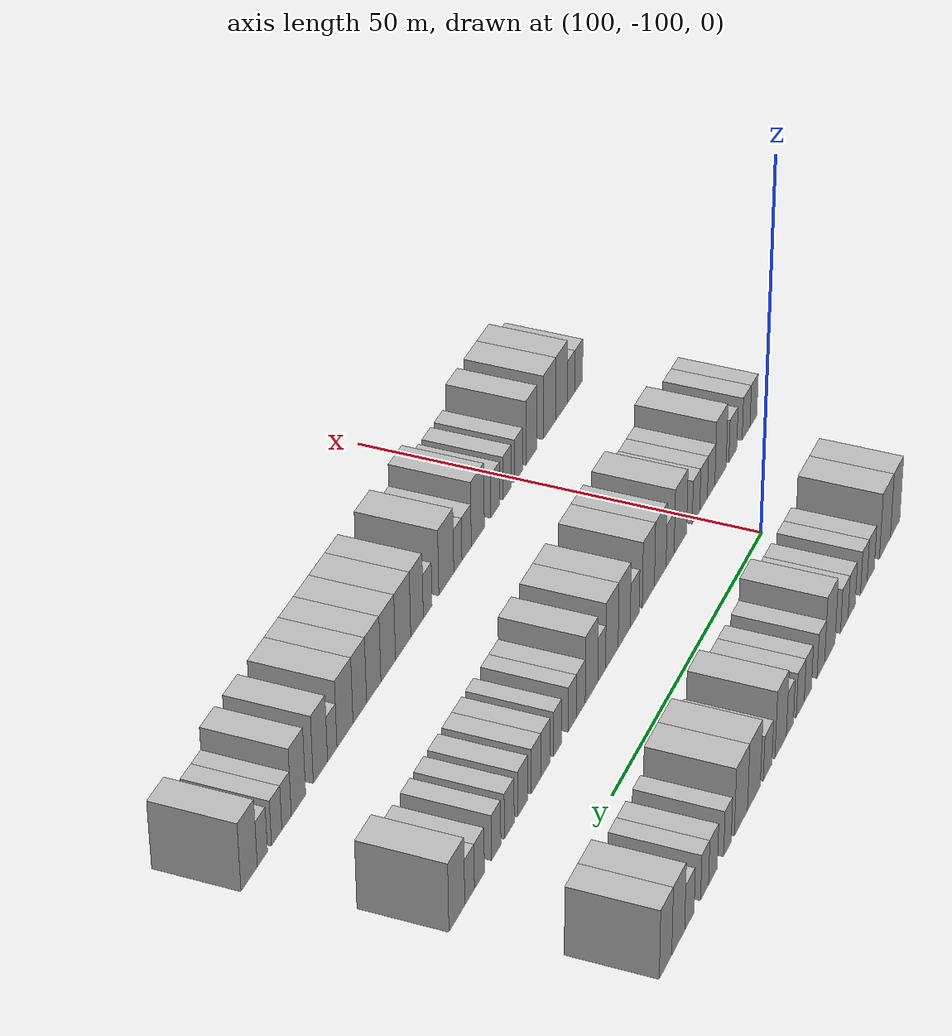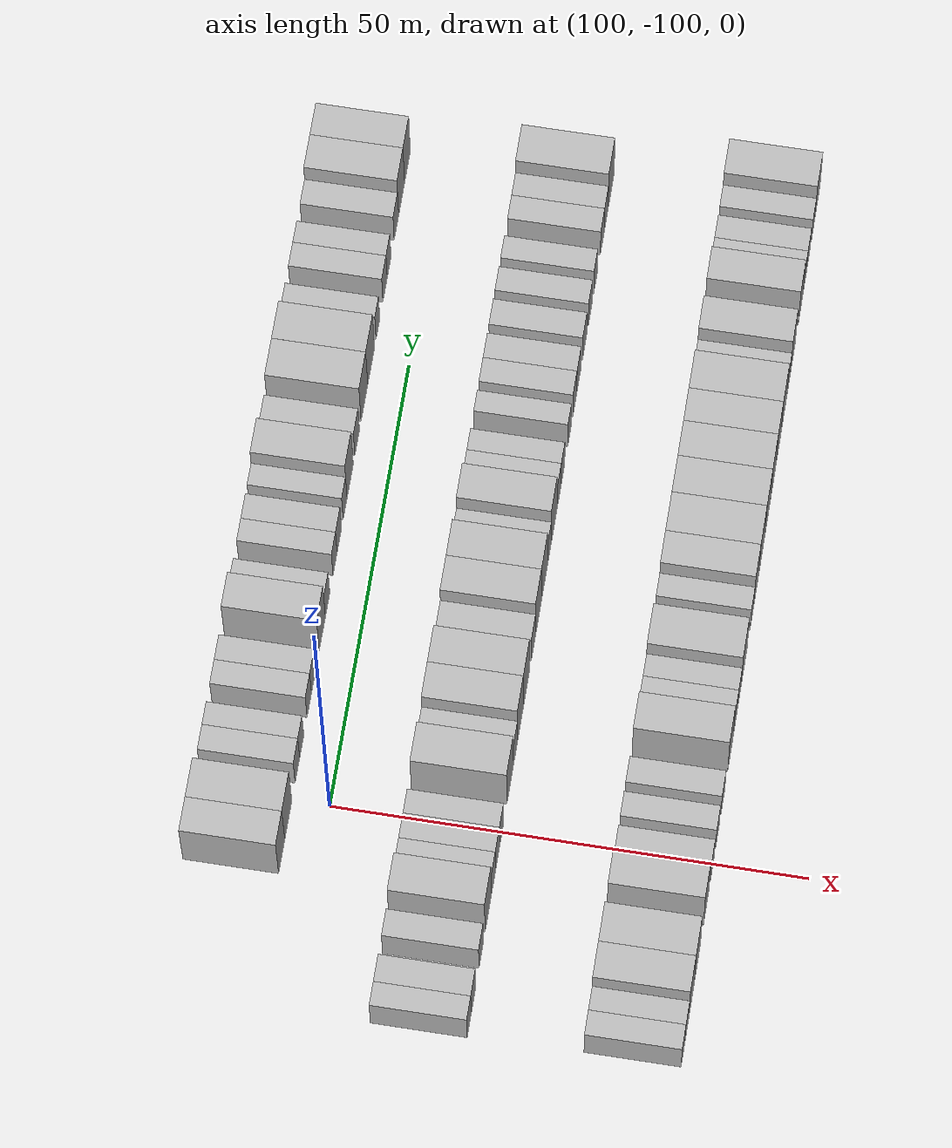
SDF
<sdf version="1.6">
 <world name="default">
  <model name="building_621">
   <static>1</static>
   <pose>91.0000 -106.1518 0 0.000000 0.000000 0.000000</pose>
   <link name="link">
    <pose>0 0 4.50 0 0 0</pose>
    <collision name="collision"><geometry><box><size>10.0000 3.7290 9.0000</size></box></geometry></collision>
    <visual name="visual">
     <cast_shadows>0</cast_shadows>
     <geometry><box><size>10.0000 3.7290 9.0000</size></box></geometry>
     <material>
      <script>
       <uri>model://HANNAS_wall/materials/scripts</uri>
       <uri>model://HANNAS_wall/materials/textures</uri>
       <name>vrc/HANNAS_wall</name>
      </script>
     </material>
    </visual>
   </link>
  </model>
  <model name="building_622">
   <static>1</static>
   <pose>91.0000 -102.1590 0 0.000000 0.000000 0.000000</pose>
   <link name="link">
    <pose>0 0 4.50 0 0 0</pose>
    <collision name="collision"><geometry><box><size>10.0000 4.2565 9.0000</size></box></geometry></collision>
    <visual name="visual">
     <cast_shadows>0</cast_shadows>
     <geometry><box><size>10.0000 4.2565 9.0000</size></box></geometry>
     <material>
      <script>
       <uri>model://HANNAS_wall/materials/scripts</uri>
       <uri>model://HANNAS_wall/materials/textures</uri>
       <name>vrc/HANNAS_wall</name>
      </script>
     </material>
    </visual>
   </link>
  </model>
  <model name="building_623">
   <static>1</static>
   <pose>91.0000 -96.6412 0 0.000000 0.000000 0.000000</pose>
   <link name="link">
    <pose>0 0 3.00 0 0 0</pose>
    <collision name="collision"><geometry><box><size>10.0000 2.7792 6.0000</size></box></geometry></collision>
    <visual name="visual">
     <cast_shadows>0</cast_shadows>
     <geometry><box><size>10.0000 2.7792 6.0000</size></box></geometry>
     <material>
      <script>
       <uri>model://HANNAS_wall/materials/scripts</uri>
       <uri>model://HANNAS_wall/materials/textures</uri>
       <name>vrc/HANNAS_wall</name>
      </script>
     </material>
    </visual>
   </link>
  </model>
  <model name="building_624">
   <static>1</static>
   <pose>91.0000 -93.9925 0 0.000000 0.000000 0.000000</pose>
   <link name="link">
    <pose>0 0 3.00 0 0 0</pose>
    <collision name="collision"><geometry><box><size>10.0000 2.5183 6.0000</size></box></geometry></collision>
    <visual name="visual">
     <cast_shadows>0</cast_shadows>
     <geometry><box><size>10.0000 2.5183 6.0000</size></box></geometry>
     <material>
      <script>
       <uri>model://HANNAS_wall/materials/scripts</uri>
       <uri>model://HANNAS_wall/materials/textures</uri>
       <name>vrc/HANNAS_wall</name>
      </script>
     </material>
    </visual>
   </link>
  </model>
  <model name="building_625">
   <static>1</static>
   <pose>91.0000 -89.3885 0 0.000000 0.000000 0.000000</pose>
   <link name="link">
    <pose>0 0 3.00 0 0 0</pose>
    <collision name="collision"><geometry><box><size>10.0000 2.6897 6.0000</size></box></geometry></collision>
    <visual name="visual">
     <cast_shadows>0</cast_shadows>
     <geometry><box><size>10.0000 2.6897 6.0000</size></box></geometry>
     <material>
      <script>
       <uri>model://HANNAS_wall/materials/scripts</uri>
       <uri>model://HANNAS_wall/materials/textures</uri>
       <name>vrc/HANNAS_wall</name>
      </script>
     </material>
    </visual>
   </link>
  </model>
  <model name="building_626">
   <static>1</static>
   <pose>91.0000 -86.6593 0 0.000000 0.000000 0.000000</pose>
   <link name="link">
    <pose>0 0 3.00 0 0 0</pose>
    <collision name="collision"><geometry><box><size>10.0000 2.7686 6.0000</size></box></geometry></collision>
    <visual name="visual">
     <cast_shadows>0</cast_shadows>
     <geometry><box><size>10.0000 2.7686 6.0000</size></box></geometry>
     <material>
      <script>
       <uri>model://HANNAS_wall/materials/scripts</uri>
       <uri>model://HANNAS_wall/materials/textures</uri>
       <name>vrc/HANNAS_wall</name>
      </script>
     </material>
    </visual>
   </link>
  </model>
  <model name="building_627">
   <static>1</static>
   <pose>91.0000 -81.3610 0 0.000000 0.000000 0.000000</pose>
   <link name="link">
    <pose>0 0 4.50 0 0 0</pose>
    <collision name="collision"><geometry><box><size>10.0000 3.8280 9.0000</size></box></geometry></collision>
    <visual name="visual">
     <cast_shadows>0</cast_shadows>
     <geometry><box><size>10.0000 3.8280 9.0000</size></box></geometry>
     <material>
      <script>
       <uri>model://HANNAS_wall/materials/scripts</uri>
       <uri>model://HANNAS_wall/materials/textures</uri>
       <name>vrc/HANNAS_wall</name>
      </script>
     </material>
    </visual>
   </link>
  </model>
  <model name="building_628">
   <static>1</static>
   <pose>91.0000 -78.0835 0 0.000000 0.000000 0.000000</pose>
   <link name="link">
    <pose>0 0 3.00 0 0 0</pose>
    <collision name="collision"><geometry><box><size>10.0000 2.7270 6.0000</size></box></geometry></collision>
    <visual name="visual">
     <cast_shadows>0</cast_shadows>
     <geometry><box><size>10.0000 2.7270 6.0000</size></box></geometry>
     <material>
      <script>
       <uri>model://HANNAS_wall/materials/scripts</uri>
       <uri>model://HANNAS_wall/materials/textures</uri>
       <name>vrc/HANNAS_wall</name>
      </script>
     </material>
    </visual>
   </link>
  </model>
  <model name="building_629">
   <static>1</static>
   <pose>91.0000 -73.4471 0 0.000000 0.000000 0.000000</pose>
   <link name="link">
    <pose>0 0 3.00 0 0 0</pose>
    <collision name="collision"><geometry><box><size>10.0000 2.5458 6.0000</size></box></geometry></collision>
    <visual name="visual">
     <cast_shadows>0</cast_shadows>
     <geometry><box><size>10.0000 2.5458 6.0000</size></box></geometry>
     <material>
      <script>
       <uri>model://HANNAS_wall/materials/scripts</uri>
       <uri>model://HANNAS_wall/materials/textures</uri>
       <name>vrc/HANNAS_wall</name>
      </script>
     </material>
    </visual>
   </link>
  </model>
  <model name="building_630">
   <static>1</static>
   <pose>91.0000 -70.7755 0 0.000000 0.000000 0.000000</pose>
   <link name="link">
    <pose>0 0 3.00 0 0 0</pose>
    <collision name="collision"><geometry><box><size>10.0000 2.7975 6.0000</size></box></geometry></collision>
    <visual name="visual">
     <cast_shadows>0</cast_shadows>
     <geometry><box><size>10.0000 2.7975 6.0000</size></box></geometry>
     <material>
      <script>
       <uri>model://HANNAS_wall/materials/scripts</uri>
       <uri>model://HANNAS_wall/materials/textures</uri>
       <name>vrc/HANNAS_wall</name>
      </script>
     </material>
    </visual>
   </link>
  </model>
  <model name="building_631">
   <static>1</static>
   <pose>91.0000 -67.1498 0 0.000000 0.000000 0.000000</pose>
   <link name="link">
    <pose>0 0 3.00 0 0 0</pose>
    <collision name="collision"><geometry><box><size>10.0000 2.4539 6.0000</size></box></geometry></collision>
    <visual name="visual">
     <cast_shadows>0</cast_shadows>
     <geometry><box><size>10.0000 2.4539 6.0000</size></box></geometry>
     <material>
      <script>
       <uri>model://HANNAS_wall/materials/scripts</uri>
       <uri>model://HANNAS_wall/materials/textures</uri>
       <name>vrc/HANNAS_wall</name>
      </script>
     </material>
    </visual>
   </link>
  </model>
  <model name="building_632">
   <static>1</static>
   <pose>91.0000 -63.9726 0 0.000000 0.000000 0.000000</pose>
   <link name="link">
    <pose>0 0 4.50 0 0 0</pose>
    <collision name="collision"><geometry><box><size>10.0000 3.9005 9.0000</size></box></geometry></collision>
    <visual name="visual">
     <cast_shadows>0</cast_shadows>
     <geometry><box><size>10.0000 3.9005 9.0000</size></box></geometry>
     <material>
      <script>
       <uri>model://HANNAS_wall/materials/scripts</uri>
       <uri>model://HANNAS_wall/materials/textures</uri>
       <name>vrc/HANNAS_wall</name>
      </script>
     </material>
    </visual>
   </link>
  </model>
  <model name="building_633">
   <static>1</static>
   <pose>91.0000 -59.5592 0 0.000000 0.000000 0.000000</pose>
   <link name="link">
    <pose>0 0 3.00 0 0 0</pose>
    <collision name="collision"><geometry><box><size>10.0000 2.9263 6.0000</size></box></geometry></collision>
    <visual name="visual">
     <cast_shadows>0</cast_shadows>
     <geometry><box><size>10.0000 2.9263 6.0000</size></box></geometry>
     <material>
      <script>
       <uri>model://HANNAS_wall/materials/scripts</uri>
       <uri>model://HANNAS_wall/materials/textures</uri>
       <name>vrc/HANNAS_wall</name>
      </script>
     </material>
    </visual>
   </link>
  </model>
  <model name="building_634">
   <static>1</static>
   <pose>91.0000 -54.9752 0 0.000000 0.000000 0.000000</pose>
   <link name="link">
    <pose>0 0 4.50 0 0 0</pose>
    <collision name="collision"><geometry><box><size>10.0000 4.2417 9.0000</size></box></geometry></collision>
    <visual name="visual">
     <cast_shadows>0</cast_shadows>
     <geometry><box><size>10.0000 4.2417 9.0000</size></box></geometry>
     <material>
      <script>
       <uri>model://HANNAS_wall/materials/scripts</uri>
       <uri>model://HANNAS_wall/materials/textures</uri>
       <name>vrc/HANNAS_wall</name>
      </script>
     </material>
    </visual>
   </link>
  </model>
  <model name="building_635">
   <static>1</static>
   <pose>91.0000 -50.7060 0 0.000000 0.000000 0.000000</pose>
   <link name="link">
    <pose>0 0 4.50 0 0 0</pose>
    <collision name="collision"><geometry><box><size>10.0000 4.2966 9.0000</size></box></geometry></collision>
    <visual name="visual">
     <cast_shadows>0</cast_shadows>
     <geometry><box><size>10.0000 4.2966 9.0000</size></box></geometry>
     <material>
      <script>
       <uri>model://HANNAS_wall/materials/scripts</uri>
       <uri>model://HANNAS_wall/materials/textures</uri>
       <name>vrc/HANNAS_wall</name>
      </script>
     </material>
    </visual>
   </link>
  </model>
  <model name="building_636">
   <static>1</static>
   <pose>91.0000 -46.3511 0 0.000000 0.000000 0.000000</pose>
   <link name="link">
    <pose>0 0 3.00 0 0 0</pose>
    <collision name="collision"><geometry><box><size>10.0000 2.4132 6.0000</size></box></geometry></collision>
    <visual name="visual">
     <cast_shadows>0</cast_shadows>
     <geometry><box><size>10.0000 2.4132 6.0000</size></box></geometry>
     <material>
      <script>
       <uri>model://HANNAS_wall/materials/scripts</uri>
       <uri>model://HANNAS_wall/materials/textures</uri>
       <name>vrc/HANNAS_wall</name>
      </script>
     </material>
    </visual>
   </link>
  </model>
  <model name="building_637">
   <static>1</static>
   <pose>91.0000 -41.7542 0 0.000000 0.000000 0.000000</pose>
   <link name="link">
    <pose>0 0 3.00 0 0 0</pose>
    <collision name="collision"><geometry><box><size>10.0000 2.7806 6.0000</size></box></geometry></collision>
    <visual name="visual">
     <cast_shadows>0</cast_shadows>
     <geometry><box><size>10.0000 2.7806 6.0000</size></box></geometry>
     <material>
      <script>
       <uri>model://HANNAS_wall/materials/scripts</uri>
       <uri>model://HANNAS_wall/materials/textures</uri>
       <name>vrc/HANNAS_wall</name>
      </script>
     </material>
    </visual>
   </link>
  </model>
  <model name="building_638">
   <static>1</static>
   <pose>91.0000 -39.1246 0 0.000000 0.000000 0.000000</pose>
   <link name="link">
    <pose>0 0 3.00 0 0 0</pose>
    <collision name="collision"><geometry><box><size>10.0000 2.4787 6.0000</size></box></geometry></collision>
    <visual name="visual">
     <cast_shadows>0</cast_shadows>
     <geometry><box><size>10.0000 2.4787 6.0000</size></box></geometry>
     <material>
      <script>
       <uri>model://HANNAS_wall/materials/scripts</uri>
       <uri>model://HANNAS_wall/materials/textures</uri>
       <name>vrc/HANNAS_wall</name>
      </script>
     </material>
    </visual>
   </link>
  </model>
  <model name="building_639">
   <static>1</static>
   <pose>91.0000 -34.4318 0 0.000000 0.000000 0.000000</pose>
   <link name="link">
    <pose>0 0 3.00 0 0 0</pose>
    <collision name="collision"><geometry><box><size>10.0000 2.9069 6.0000</size></box></geometry></collision>
    <visual name="visual">
     <cast_shadows>0</cast_shadows>
     <geometry><box><size>10.0000 2.9069 6.0000</size></box></geometry>
     <material>
      <script>
       <uri>model://HANNAS_wall/materials/scripts</uri>
       <uri>model://HANNAS_wall/materials/textures</uri>
       <name>vrc/HANNAS_wall</name>
      </script>
     </material>
    </visual>
   </link>
  </model>
  <model name="building_640">
   <static>1</static>
   <pose>91.0000 -31.0367 0 0.000000 0.000000 0.000000</pose>
   <link name="link">
    <pose>0 0 4.50 0 0 0</pose>
    <collision name="collision"><geometry><box><size>10.0000 3.8832 9.0000</size></box></geometry></collision>
    <visual name="visual">
     <cast_shadows>0</cast_shadows>
     <geometry><box><size>10.0000 3.8832 9.0000</size></box></geometry>
     <material>
      <script>
       <uri>model://HANNAS_wall/materials/scripts</uri>
       <uri>model://HANNAS_wall/materials/textures</uri>
       <name>vrc/HANNAS_wall</name>
      </script>
     </material>
    </visual>
   </link>
  </model>
  <model name="building_641">
   <static>1</static>
   <pose>91.0000 -27.2369 0 0.000000 0.000000 0.000000</pose>
   <link name="link">
    <pose>0 0 4.50 0 0 0</pose>
    <collision name="collision"><geometry><box><size>10.0000 3.7163 9.0000</size></box></geometry></collision>
    <visual name="visual">
     <cast_shadows>0</cast_shadows>
     <geometry><box><size>10.0000 3.7163 9.0000</size></box></geometry>
     <material>
      <script>
       <uri>model://HANNAS_wall/materials/scripts</uri>
       <uri>model://HANNAS_wall/materials/textures</uri>
       <name>vrc/HANNAS_wall</name>
      </script>
     </material>
    </visual>
   </link>
  </model>
  <model name="building_808">
   <static>1</static>
   <pose>113.0000 -121.0877 0 0.000000 0.000000 0.000000</pose>
   <link name="link">
    <pose>0 0 3.00 0 0 0</pose>
    <collision name="collision"><geometry><box><size>10.0000 2.5785 6.0000</size></box></geometry></collision>
    <visual name="visual">
     <cast_shadows>0</cast_shadows>
     <geometry><box><size>10.0000 2.5785 6.0000</size></box></geometry>
     <material>
      <script>
       <uri>model://HANNAS_wall/materials/scripts</uri>
       <uri>model://HANNAS_wall/materials/textures</uri>
       <name>vrc/HANNAS_wall</name>
      </script>
     </material>
    </visual>
   </link>
  </model>
  <model name="building_809">
   <static>1</static>
   <pose>113.0000 -118.3335 0 0.000000 0.000000 0.000000</pose>
   <link name="link">
    <pose>0 0 3.00 0 0 0</pose>
    <collision name="collision"><geometry><box><size>10.0000 2.9298 6.0000</size></box></geometry></collision>
    <visual name="visual">
     <cast_shadows>0</cast_shadows>
     <geometry><box><size>10.0000 2.9298 6.0000</size></box></geometry>
     <material>
      <script>
       <uri>model://HANNAS_wall/materials/scripts</uri>
       <uri>model://HANNAS_wall/materials/textures</uri>
       <name>vrc/HANNAS_wall</name>
      </script>
     </material>
    </visual>
   </link>
  </model>
  <model name="building_810">
   <static>1</static>
   <pose>113.0000 -113.4203 0 0.000000 0.000000 0.000000</pose>
   <link name="link">
    <pose>0 0 3.00 0 0 0</pose>
    <collision name="collision"><geometry><box><size>10.0000 2.8966 6.0000</size></box></geometry></collision>
    <visual name="visual">
     <cast_shadows>0</cast_shadows>
     <geometry><box><size>10.0000 2.8966 6.0000</size></box></geometry>
     <material>
      <script>
       <uri>model://HANNAS_wall/materials/scripts</uri>
       <uri>model://HANNAS_wall/materials/textures</uri>
       <name>vrc/HANNAS_wall</name>
      </script>
     </material>
    </visual>
   </link>
  </model>
  <model name="building_811">
   <static>1</static>
   <pose>113.0000 -108.9302 0 0.000000 0.000000 0.000000</pose>
   <link name="link">
    <pose>0 0 4.50 0 0 0</pose>
    <collision name="collision"><geometry><box><size>10.0000 4.0835 9.0000</size></box></geometry></collision>
    <visual name="visual">
     <cast_shadows>0</cast_shadows>
     <geometry><box><size>10.0000 4.0835 9.0000</size></box></geometry>
     <material>
      <script>
       <uri>model://HANNAS_wall/materials/scripts</uri>
       <uri>model://HANNAS_wall/materials/textures</uri>
       <name>vrc/HANNAS_wall</name>
      </script>
     </material>
    </visual>
   </link>
  </model>
  <model name="building_812">
   <static>1</static>
   <pose>113.0000 -105.5512 0 0.000000 0.000000 0.000000</pose>
   <link name="link">
    <pose>0 0 3.00 0 0 0</pose>
    <collision name="collision"><geometry><box><size>10.0000 2.6747 6.0000</size></box></geometry></collision>
    <visual name="visual">
     <cast_shadows>0</cast_shadows>
     <geometry><box><size>10.0000 2.6747 6.0000</size></box></geometry>
     <material>
      <script>
       <uri>model://HANNAS_wall/materials/scripts</uri>
       <uri>model://HANNAS_wall/materials/textures</uri>
       <name>vrc/HANNAS_wall</name>
      </script>
     </material>
    </visual>
   </link>
  </model>
  <model name="building_813">
   <static>1</static>
   <pose>113.0000 -102.8632 0 0.000000 0.000000 0.000000</pose>
   <link name="link">
    <pose>0 0 3.00 0 0 0</pose>
    <collision name="collision"><geometry><box><size>10.0000 2.7012 6.0000</size></box></geometry></collision>
    <visual name="visual">
     <cast_shadows>0</cast_shadows>
     <geometry><box><size>10.0000 2.7012 6.0000</size></box></geometry>
     <material>
      <script>
       <uri>model://HANNAS_wall/materials/scripts</uri>
       <uri>model://HANNAS_wall/materials/textures</uri>
       <name>vrc/HANNAS_wall</name>
      </script>
     </material>
    </visual>
   </link>
  </model>
  <model name="building_814">
   <static>1</static>
   <pose>113.0000 -100.2019 0 0.000000 0.000000 0.000000</pose>
   <link name="link">
    <pose>0 0 3.00 0 0 0</pose>
    <collision name="collision"><geometry><box><size>10.0000 2.6215 6.0000</size></box></geometry></collision>
    <visual name="visual">
     <cast_shadows>0</cast_shadows>
     <geometry><box><size>10.0000 2.6215 6.0000</size></box></geometry>
     <material>
      <script>
       <uri>model://HANNAS_wall/materials/scripts</uri>
       <uri>model://HANNAS_wall/materials/textures</uri>
       <name>vrc/HANNAS_wall</name>
      </script>
     </material>
    </visual>
   </link>
  </model>
  <model name="building_815">
   <static>1</static>
   <pose>113.0000 -94.7405 0 0.000000 0.000000 0.000000</pose>
   <link name="link">
    <pose>0 0 4.50 0 0 0</pose>
    <collision name="collision"><geometry><box><size>10.0000 4.3014 9.0000</size></box></geometry></collision>
    <visual name="visual">
     <cast_shadows>0</cast_shadows>
     <geometry><box><size>10.0000 4.3014 9.0000</size></box></geometry>
     <material>
      <script>
       <uri>model://HANNAS_wall/materials/scripts</uri>
       <uri>model://HANNAS_wall/materials/textures</uri>
       <name>vrc/HANNAS_wall</name>
      </script>
     </material>
    </visual>
   </link>
  </model>
  <model name="building_816">
   <static>1</static>
   <pose>113.0000 -91.2163 0 0.000000 0.000000 0.000000</pose>
   <link name="link">
    <pose>0 0 3.00 0 0 0</pose>
    <collision name="collision"><geometry><box><size>10.0000 2.7469 6.0000</size></box></geometry></collision>
    <visual name="visual">
     <cast_shadows>0</cast_shadows>
     <geometry><box><size>10.0000 2.7469 6.0000</size></box></geometry>
     <material>
      <script>
       <uri>model://HANNAS_wall/materials/scripts</uri>
       <uri>model://HANNAS_wall/materials/textures</uri>
       <name>vrc/HANNAS_wall</name>
      </script>
     </material>
    </visual>
   </link>
  </model>
  <model name="building_817">
   <static>1</static>
   <pose>113.0000 -87.8841 0 0.000000 0.000000 0.000000</pose>
   <link name="link">
    <pose>0 0 4.50 0 0 0</pose>
    <collision name="collision"><geometry><box><size>10.0000 3.9176 9.0000</size></box></geometry></collision>
    <visual name="visual">
     <cast_shadows>0</cast_shadows>
     <geometry><box><size>10.0000 3.9176 9.0000</size></box></geometry>
     <material>
      <script>
       <uri>model://HANNAS_wall/materials/scripts</uri>
       <uri>model://HANNAS_wall/materials/textures</uri>
       <name>vrc/HANNAS_wall</name>
      </script>
     </material>
    </visual>
   </link>
  </model>
  <model name="building_818">
   <static>1</static>
   <pose>113.0000 -83.9077 0 0.000000 0.000000 0.000000</pose>
   <link name="link">
    <pose>0 0 4.50 0 0 0</pose>
    <collision name="collision"><geometry><box><size>10.0000 4.0351 9.0000</size></box></geometry></collision>
    <visual name="visual">
     <cast_shadows>0</cast_shadows>
     <geometry><box><size>10.0000 4.0351 9.0000</size></box></geometry>
     <material>
      <script>
       <uri>model://HANNAS_wall/materials/scripts</uri>
       <uri>model://HANNAS_wall/materials/textures</uri>
       <name>vrc/HANNAS_wall</name>
      </script>
     </material>
    </visual>
   </link>
  </model>
  <model name="building_819">
   <static>1</static>
   <pose>113.0000 -79.4194 0 0.000000 0.000000 0.000000</pose>
   <link name="link">
    <pose>0 0 3.00 0 0 0</pose>
    <collision name="collision"><geometry><box><size>10.0000 2.9414 6.0000</size></box></geometry></collision>
    <visual name="visual">
     <cast_shadows>0</cast_shadows>
     <geometry><box><size>10.0000 2.9414 6.0000</size></box></geometry>
     <material>
      <script>
       <uri>model://HANNAS_wall/materials/scripts</uri>
       <uri>model://HANNAS_wall/materials/textures</uri>
       <name>vrc/HANNAS_wall</name>
      </script>
     </material>
    </visual>
   </link>
  </model>
  <model name="building_820">
   <static>1</static>
   <pose>113.0000 -75.9925 0 0.000000 0.000000 0.000000</pose>
   <link name="link">
    <pose>0 0 4.50 0 0 0</pose>
    <collision name="collision"><geometry><box><size>10.0000 3.9124 9.0000</size></box></geometry></collision>
    <visual name="visual">
     <cast_shadows>0</cast_shadows>
     <geometry><box><size>10.0000 3.9124 9.0000</size></box></geometry>
     <material>
      <script>
       <uri>model://HANNAS_wall/materials/scripts</uri>
       <uri>model://HANNAS_wall/materials/textures</uri>
       <name>vrc/HANNAS_wall</name>
      </script>
     </material>
    </visual>
   </link>
  </model>
  <model name="building_821">
   <static>1</static>
   <pose>113.0000 -72.0273 0 0.000000 0.000000 0.000000</pose>
   <link name="link">
    <pose>0 0 4.50 0 0 0</pose>
    <collision name="collision"><geometry><box><size>10.0000 4.0180 9.0000</size></box></geometry></collision>
    <visual name="visual">
     <cast_shadows>0</cast_shadows>
     <geometry><box><size>10.0000 4.0180 9.0000</size></box></geometry>
     <material>
      <script>
       <uri>model://HANNAS_wall/materials/scripts</uri>
       <uri>model://HANNAS_wall/materials/textures</uri>
       <name>vrc/HANNAS_wall</name>
      </script>
     </material>
    </visual>
   </link>
  </model>
  <model name="building_822">
   <static>1</static>
   <pose>113.0000 -68.7781 0 0.000000 0.000000 0.000000</pose>
   <link name="link">
    <pose>0 0 3.00 0 0 0</pose>
    <collision name="collision"><geometry><box><size>10.0000 2.4806 6.0000</size></box></geometry></collision>
    <visual name="visual">
     <cast_shadows>0</cast_shadows>
     <geometry><box><size>10.0000 2.4806 6.0000</size></box></geometry>
     <material>
      <script>
       <uri>model://HANNAS_wall/materials/scripts</uri>
       <uri>model://HANNAS_wall/materials/textures</uri>
       <name>vrc/HANNAS_wall</name>
      </script>
     </material>
    </visual>
   </link>
  </model>
  <model name="building_823">
   <static>1</static>
   <pose>113.0000 -65.5941 0 0.000000 0.000000 0.000000</pose>
   <link name="link">
    <pose>0 0 4.50 0 0 0</pose>
    <collision name="collision"><geometry><box><size>10.0000 3.8873 9.0000</size></box></geometry></collision>
    <visual name="visual">
     <cast_shadows>0</cast_shadows>
     <geometry><box><size>10.0000 3.8873 9.0000</size></box></geometry>
     <material>
      <script>
       <uri>model://HANNAS_wall/materials/scripts</uri>
       <uri>model://HANNAS_wall/materials/textures</uri>
       <name>vrc/HANNAS_wall</name>
      </script>
     </material>
    </visual>
   </link>
  </model>
  <model name="building_824">
   <static>1</static>
   <pose>113.0000 -62.2578 0 0.000000 0.000000 0.000000</pose>
   <link name="link">
    <pose>0 0 3.00 0 0 0</pose>
    <collision name="collision"><geometry><box><size>10.0000 2.7852 6.0000</size></box></geometry></collision>
    <visual name="visual">
     <cast_shadows>0</cast_shadows>
     <geometry><box><size>10.0000 2.7852 6.0000</size></box></geometry>
     <material>
      <script>
       <uri>model://HANNAS_wall/materials/scripts</uri>
       <uri>model://HANNAS_wall/materials/textures</uri>
       <name>vrc/HANNAS_wall</name>
      </script>
     </material>
    </visual>
   </link>
  </model>
  <model name="building_825">
   <static>1</static>
   <pose>113.0000 -59.6592 0 0.000000 0.000000 0.000000</pose>
   <link name="link">
    <pose>0 0 3.00 0 0 0</pose>
    <collision name="collision"><geometry><box><size>10.0000 2.4120 6.0000</size></box></geometry></collision>
    <visual name="visual">
     <cast_shadows>0</cast_shadows>
     <geometry><box><size>10.0000 2.4120 6.0000</size></box></geometry>
     <material>
      <script>
       <uri>model://HANNAS_wall/materials/scripts</uri>
       <uri>model://HANNAS_wall/materials/textures</uri>
       <name>vrc/HANNAS_wall</name>
      </script>
     </material>
    </visual>
   </link>
  </model>
  <model name="building_826">
   <static>1</static>
   <pose>113.0000 -55.2512 0 0.000000 0.000000 0.000000</pose>
   <link name="link">
    <pose>0 0 3.00 0 0 0</pose>
    <collision name="collision"><geometry><box><size>10.0000 2.4041 6.0000</size></box></geometry></collision>
    <visual name="visual">
     <cast_shadows>0</cast_shadows>
     <geometry><box><size>10.0000 2.4041 6.0000</size></box></geometry>
     <material>
      <script>
       <uri>model://HANNAS_wall/materials/scripts</uri>
       <uri>model://HANNAS_wall/materials/textures</uri>
       <name>vrc/HANNAS_wall</name>
      </script>
     </material>
    </visual>
   </link>
  </model>
  <model name="building_827">
   <static>1</static>
   <pose>113.0000 -51.6596 0 0.000000 0.000000 0.000000</pose>
   <link name="link">
    <pose>0 0 3.00 0 0 0</pose>
    <collision name="collision"><geometry><box><size>10.0000 2.7790 6.0000</size></box></geometry></collision>
    <visual name="visual">
     <cast_shadows>0</cast_shadows>
     <geometry><box><size>10.0000 2.7790 6.0000</size></box></geometry>
     <material>
      <script>
       <uri>model://HANNAS_wall/materials/scripts</uri>
       <uri>model://HANNAS_wall/materials/textures</uri>
       <name>vrc/HANNAS_wall</name>
      </script>
     </material>
    </visual>
   </link>
  </model>
  <model name="building_828">
   <static>1</static>
   <pose>113.0000 -48.8586 0 0.000000 0.000000 0.000000</pose>
   <link name="link">
    <pose>0 0 3.00 0 0 0</pose>
    <collision name="collision"><geometry><box><size>10.0000 2.8230 6.0000</size></box></geometry></collision>
    <visual name="visual">
     <cast_shadows>0</cast_shadows>
     <geometry><box><size>10.0000 2.8230 6.0000</size></box></geometry>
     <material>
      <script>
       <uri>model://HANNAS_wall/materials/scripts</uri>
       <uri>model://HANNAS_wall/materials/textures</uri>
       <name>vrc/HANNAS_wall</name>
      </script>
     </material>
    </visual>
   </link>
  </model>
  <model name="building_829">
   <static>1</static>
   <pose>113.0000 -44.9686 0 0.000000 0.000000 0.000000</pose>
   <link name="link">
    <pose>0 0 3.00 0 0 0</pose>
    <collision name="collision"><geometry><box><size>10.0000 2.9571 6.0000</size></box></geometry></collision>
    <visual name="visual">
     <cast_shadows>0</cast_shadows>
     <geometry><box><size>10.0000 2.9571 6.0000</size></box></geometry>
     <material>
      <script>
       <uri>model://HANNAS_wall/materials/scripts</uri>
       <uri>model://HANNAS_wall/materials/textures</uri>
       <name>vrc/HANNAS_wall</name>
      </script>
     </material>
    </visual>
   </link>
  </model>
  <model name="building_830">
   <static>1</static>
   <pose>113.0000 -41.1045 0 0.000000 0.000000 0.000000</pose>
   <link name="link">
    <pose>0 0 3.00 0 0 0</pose>
    <collision name="collision"><geometry><box><size>10.0000 2.7711 6.0000</size></box></geometry></collision>
    <visual name="visual">
     <cast_shadows>0</cast_shadows>
     <geometry><box><size>10.0000 2.7711 6.0000</size></box></geometry>
     <material>
      <script>
       <uri>model://HANNAS_wall/materials/scripts</uri>
       <uri>model://HANNAS_wall/materials/textures</uri>
       <name>vrc/HANNAS_wall</name>
      </script>
     </material>
    </visual>
   </link>
  </model>
  <model name="building_831">
   <static>1</static>
   <pose>113.0000 -37.4165 0 0.000000 0.000000 0.000000</pose>
   <link name="link">
    <pose>0 0 3.00 0 0 0</pose>
    <collision name="collision"><geometry><box><size>10.0000 2.6048 6.0000</size></box></geometry></collision>
    <visual name="visual">
     <cast_shadows>0</cast_shadows>
     <geometry><box><size>10.0000 2.6048 6.0000</size></box></geometry>
     <material>
      <script>
       <uri>model://HANNAS_wall/materials/scripts</uri>
       <uri>model://HANNAS_wall/materials/textures</uri>
       <name>vrc/HANNAS_wall</name>
      </script>
     </material>
    </visual>
   </link>
  </model>
  <model name="building_832">
   <static>1</static>
   <pose>113.0000 -32.7299 0 0.000000 0.000000 0.000000</pose>
   <link name="link">
    <pose>0 0 3.00 0 0 0</pose>
    <collision name="collision"><geometry><box><size>10.0000 2.7684 6.0000</size></box></geometry></collision>
    <visual name="visual">
     <cast_shadows>0</cast_shadows>
     <geometry><box><size>10.0000 2.7684 6.0000</size></box></geometry>
     <material>
      <script>
       <uri>model://HANNAS_wall/materials/scripts</uri>
       <uri>model://HANNAS_wall/materials/textures</uri>
       <name>vrc/HANNAS_wall</name>
      </script>
     </material>
    </visual>
   </link>
  </model>
  <model name="building_833">
   <static>1</static>
   <pose>113.0000 -30.0265 0 0.000000 0.000000 0.000000</pose>
   <link name="link">
    <pose>0 0 3.00 0 0 0</pose>
    <collision name="collision"><geometry><box><size>10.0000 2.6384 6.0000</size></box></geometry></collision>
    <visual name="visual">
     <cast_shadows>0</cast_shadows>
     <geometry><box><size>10.0000 2.6384 6.0000</size></box></geometry>
     <material>
      <script>
       <uri>model://HANNAS_wall/materials/scripts</uri>
       <uri>model://HANNAS_wall/materials/textures</uri>
       <name>vrc/HANNAS_wall</name>
      </script>
     </material>
    </visual>
   </link>
  </model>
  <model name="building_834">
   <static>1</static>
   <pose>113.0000 -26.5678 0 0.000000 0.000000 0.000000</pose>
   <link name="link">
    <pose>0 0 4.50 0 0 0</pose>
    <collision name="collision"><geometry><box><size>10.0000 4.2789 9.0000</size></box></geometry></collision>
    <visual name="visual">
     <cast_shadows>0</cast_shadows>
     <geometry><box><size>10.0000 4.2789 9.0000</size></box></geometry>
     <material>
      <script>
       <uri>model://HANNAS_wall/materials/scripts</uri>
       <uri>model://HANNAS_wall/materials/textures</uri>
       <name>vrc/HANNAS_wall</name>
      </script>
     </material>
    </visual>
   </link>
  </model>
  <model name="building_994">
   <static>1</static>
   <pose>135.0000 -120.7067 0 0.000000 0.000000 0.000000</pose>
   <link name="link">
    <pose>0 0 3.00 0 0 0</pose>
    <collision name="collision"><geometry><box><size>10.0000 2.6829 6.0000</size></box></geometry></collision>
    <visual name="visual">
     <cast_shadows>0</cast_shadows>
     <geometry><box><size>10.0000 2.6829 6.0000</size></box></geometry>
     <material>
      <script>
       <uri>model://HANNAS_wall/materials/scripts</uri>
       <uri>model://HANNAS_wall/materials/textures</uri>
       <name>vrc/HANNAS_wall</name>
      </script>
     </material>
    </visual>
   </link>
  </model>
  <model name="building_995">
   <static>1</static>
   <pose>135.0000 -118.1004 0 0.000000 0.000000 0.000000</pose>
   <link name="link">
    <pose>0 0 3.00 0 0 0</pose>
    <collision name="collision"><geometry><box><size>10.0000 2.5297 6.0000</size></box></geometry></collision>
    <visual name="visual">
     <cast_shadows>0</cast_shadows>
     <geometry><box><size>10.0000 2.5297 6.0000</size></box></geometry>
     <material>
      <script>
       <uri>model://HANNAS_wall/materials/scripts</uri>
       <uri>model://HANNAS_wall/materials/textures</uri>
       <name>vrc/HANNAS_wall</name>
      </script>
     </material>
    </visual>
   </link>
  </model>
  <model name="building_996">
   <static>1</static>
   <pose>135.0000 -114.8846 0 0.000000 0.000000 0.000000</pose>
   <link name="link">
    <pose>0 0 4.50 0 0 0</pose>
    <collision name="collision"><geometry><box><size>10.0000 3.9020 9.0000</size></box></geometry></collision>
    <visual name="visual">
     <cast_shadows>0</cast_shadows>
     <geometry><box><size>10.0000 3.9020 9.0000</size></box></geometry>
     <material>
      <script>
       <uri>model://HANNAS_wall/materials/scripts</uri>
       <uri>model://HANNAS_wall/materials/textures</uri>
       <name>vrc/HANNAS_wall</name>
      </script>
     </material>
    </visual>
   </link>
  </model>
  <model name="building_997">
   <static>1</static>
   <pose>135.0000 -110.8258 0 0.000000 0.000000 0.000000</pose>
   <link name="link">
    <pose>0 0 4.50 0 0 0</pose>
    <collision name="collision"><geometry><box><size>10.0000 4.2154 9.0000</size></box></geometry></collision>
    <visual name="visual">
     <cast_shadows>0</cast_shadows>
     <geometry><box><size>10.0000 4.2154 9.0000</size></box></geometry>
     <material>
      <script>
       <uri>model://HANNAS_wall/materials/scripts</uri>
       <uri>model://HANNAS_wall/materials/textures</uri>
       <name>vrc/HANNAS_wall</name>
      </script>
     </material>
    </visual>
   </link>
  </model>
  <model name="building_998">
   <static>1</static>
   <pose>135.0000 -104.8856 0 0.000000 0.000000 0.000000</pose>
   <link name="link">
    <pose>0 0 4.50 0 0 0</pose>
    <collision name="collision"><geometry><box><size>10.0000 3.6651 9.0000</size></box></geometry></collision>
    <visual name="visual">
     <cast_shadows>0</cast_shadows>
     <geometry><box><size>10.0000 3.6651 9.0000</size></box></geometry>
     <material>
      <script>
       <uri>model://HANNAS_wall/materials/scripts</uri>
       <uri>model://HANNAS_wall/materials/textures</uri>
       <name>vrc/HANNAS_wall</name>
      </script>
     </material>
    </visual>
   </link>
  </model>
  <model name="building_999">
   <static>1</static>
   <pose>135.0000 -100.6998 0 0.000000 0.000000 0.000000</pose>
   <link name="link">
    <pose>0 0 3.00 0 0 0</pose>
    <collision name="collision"><geometry><box><size>10.0000 2.7065 6.0000</size></box></geometry></collision>
    <visual name="visual">
     <cast_shadows>0</cast_shadows>
     <geometry><box><size>10.0000 2.7065 6.0000</size></box></geometry>
     <material>
      <script>
       <uri>model://HANNAS_wall/materials/scripts</uri>
       <uri>model://HANNAS_wall/materials/textures</uri>
       <name>vrc/HANNAS_wall</name>
      </script>
     </material>
    </visual>
   </link>
  </model>
  <model name="building_1000">
   <static>1</static>
   <pose>135.0000 -96.9940 0 0.000000 0.000000 0.000000</pose>
   <link name="link">
    <pose>0 0 3.00 0 0 0</pose>
    <collision name="collision"><geometry><box><size>10.0000 2.7051 6.0000</size></box></geometry></collision>
    <visual name="visual">
     <cast_shadows>0</cast_shadows>
     <geometry><box><size>10.0000 2.7051 6.0000</size></box></geometry>
     <material>
      <script>
       <uri>model://HANNAS_wall/materials/scripts</uri>
       <uri>model://HANNAS_wall/materials/textures</uri>
       <name>vrc/HANNAS_wall</name>
      </script>
     </material>
    </visual>
   </link>
  </model>
  <model name="building_1001">
   <static>1</static>
   <pose>135.0000 -93.2212 0 0.000000 0.000000 0.000000</pose>
   <link name="link">
    <pose>0 0 3.00 0 0 0</pose>
    <collision name="collision"><geometry><box><size>10.0000 2.8406 6.0000</size></box></geometry></collision>
    <visual name="visual">
     <cast_shadows>0</cast_shadows>
     <geometry><box><size>10.0000 2.8406 6.0000</size></box></geometry>
     <material>
      <script>
       <uri>model://HANNAS_wall/materials/scripts</uri>
       <uri>model://HANNAS_wall/materials/textures</uri>
       <name>vrc/HANNAS_wall</name>
      </script>
     </material>
    </visual>
   </link>
  </model>
  <model name="building_1002">
   <static>1</static>
   <pose>135.0000 -87.7773 0 0.000000 0.000000 0.000000</pose>
   <link name="link">
    <pose>0 0 4.50 0 0 0</pose>
    <collision name="collision"><geometry><box><size>10.0000 4.0470 9.0000</size></box></geometry></collision>
    <visual name="visual">
     <cast_shadows>0</cast_shadows>
     <geometry><box><size>10.0000 4.0470 9.0000</size></box></geometry>
     <material>
      <script>
       <uri>model://HANNAS_wall/materials/scripts</uri>
       <uri>model://HANNAS_wall/materials/textures</uri>
       <name>vrc/HANNAS_wall</name>
      </script>
     </material>
    </visual>
   </link>
  </model>
  <model name="building_1003">
   <static>1</static>
   <pose>135.0000 -84.3247 0 0.000000 0.000000 0.000000</pose>
   <link name="link">
    <pose>0 0 3.00 0 0 0</pose>
    <collision name="collision"><geometry><box><size>10.0000 2.8582 6.0000</size></box></geometry></collision>
    <visual name="visual">
     <cast_shadows>0</cast_shadows>
     <geometry><box><size>10.0000 2.8582 6.0000</size></box></geometry>
     <material>
      <script>
       <uri>model://HANNAS_wall/materials/scripts</uri>
       <uri>model://HANNAS_wall/materials/textures</uri>
       <name>vrc/HANNAS_wall</name>
      </script>
     </material>
    </visual>
   </link>
  </model>
  <model name="building_1004">
   <static>1</static>
   <pose>135.0000 -81.6634 0 0.000000 0.000000 0.000000</pose>
   <link name="link">
    <pose>0 0 3.00 0 0 0</pose>
    <collision name="collision"><geometry><box><size>10.0000 2.4645 6.0000</size></box></geometry></collision>
    <visual name="visual">
     <cast_shadows>0</cast_shadows>
     <geometry><box><size>10.0000 2.4645 6.0000</size></box></geometry>
     <material>
      <script>
       <uri>model://HANNAS_wall/materials/scripts</uri>
       <uri>model://HANNAS_wall/materials/textures</uri>
       <name>vrc/HANNAS_wall</name>
      </script>
     </material>
    </visual>
   </link>
  </model>
  <model name="building_1005">
   <static>1</static>
   <pose>135.0000 -78.1928 0 0.000000 0.000000 0.000000</pose>
   <link name="link">
    <pose>0 0 4.50 0 0 0</pose>
    <collision name="collision"><geometry><box><size>10.0000 4.4769 9.0000</size></box></geometry></collision>
    <visual name="visual">
     <cast_shadows>0</cast_shadows>
     <geometry><box><size>10.0000 4.4769 9.0000</size></box></geometry>
     <material>
      <script>
       <uri>model://HANNAS_wall/materials/scripts</uri>
       <uri>model://HANNAS_wall/materials/textures</uri>
       <name>vrc/HANNAS_wall</name>
      </script>
     </material>
    </visual>
   </link>
  </model>
  <model name="building_1006">
   <static>1</static>
   <pose>135.0000 -72.6724 0 0.000000 0.000000 0.000000</pose>
   <link name="link">
    <pose>0 0 3.00 0 0 0</pose>
    <collision name="collision"><geometry><box><size>10.0000 2.5638 6.0000</size></box></geometry></collision>
    <visual name="visual">
     <cast_shadows>0</cast_shadows>
     <geometry><box><size>10.0000 2.5638 6.0000</size></box></geometry>
     <material>
      <script>
       <uri>model://HANNAS_wall/materials/scripts</uri>
       <uri>model://HANNAS_wall/materials/textures</uri>
       <name>vrc/HANNAS_wall</name>
      </script>
     </material>
    </visual>
   </link>
  </model>
  <model name="building_1007">
   <static>1</static>
   <pose>135.0000 -69.5715 0 0.000000 0.000000 0.000000</pose>
   <link name="link">
    <pose>0 0 4.50 0 0 0</pose>
    <collision name="collision"><geometry><box><size>10.0000 3.6380 9.0000</size></box></geometry></collision>
    <visual name="visual">
     <cast_shadows>0</cast_shadows>
     <geometry><box><size>10.0000 3.6380 9.0000</size></box></geometry>
     <material>
      <script>
       <uri>model://HANNAS_wall/materials/scripts</uri>
       <uri>model://HANNAS_wall/materials/textures</uri>
       <name>vrc/HANNAS_wall</name>
      </script>
     </material>
    </visual>
   </link>
  </model>
  <model name="building_1008">
   <static>1</static>
   <pose>135.0000 -65.5687 0 0.000000 0.000000 0.000000</pose>
   <link name="link">
    <pose>0 0 4.50 0 0 0</pose>
    <collision name="collision"><geometry><box><size>10.0000 4.3676 9.0000</size></box></geometry></collision>
    <visual name="visual">
     <cast_shadows>0</cast_shadows>
     <geometry><box><size>10.0000 4.3676 9.0000</size></box></geometry>
     <material>
      <script>
       <uri>model://HANNAS_wall/materials/scripts</uri>
       <uri>model://HANNAS_wall/materials/textures</uri>
       <name>vrc/HANNAS_wall</name>
      </script>
     </material>
    </visual>
   </link>
  </model>
  <model name="building_1009">
   <static>1</static>
   <pose>135.0000 -61.3199 0 0.000000 0.000000 0.000000</pose>
   <link name="link">
    <pose>0 0 4.50 0 0 0</pose>
    <collision name="collision"><geometry><box><size>10.0000 4.1300 9.0000</size></box></geometry></collision>
    <visual name="visual">
     <cast_shadows>0</cast_shadows>
     <geometry><box><size>10.0000 4.1300 9.0000</size></box></geometry>
     <material>
      <script>
       <uri>model://HANNAS_wall/materials/scripts</uri>
       <uri>model://HANNAS_wall/materials/textures</uri>
       <name>vrc/HANNAS_wall</name>
      </script>
     </material>
    </visual>
   </link>
  </model>
  <model name="building_1010">
   <static>1</static>
   <pose>135.0000 -57.2630 0 0.000000 0.000000 0.000000</pose>
   <link name="link">
    <pose>0 0 4.50 0 0 0</pose>
    <collision name="collision"><geometry><box><size>10.0000 3.9839 9.0000</size></box></geometry></collision>
    <visual name="visual">
     <cast_shadows>0</cast_shadows>
     <geometry><box><size>10.0000 3.9839 9.0000</size></box></geometry>
     <material>
      <script>
       <uri>model://HANNAS_wall/materials/scripts</uri>
       <uri>model://HANNAS_wall/materials/textures</uri>
       <name>vrc/HANNAS_wall</name>
      </script>
     </material>
    </visual>
   </link>
  </model>
  <model name="building_1011">
   <static>1</static>
   <pose>135.0000 -53.4102 0 0.000000 0.000000 0.000000</pose>
   <link name="link">
    <pose>0 0 4.50 0 0 0</pose>
    <collision name="collision"><geometry><box><size>10.0000 3.7217 9.0000</size></box></geometry></collision>
    <visual name="visual">
     <cast_shadows>0</cast_shadows>
     <geometry><box><size>10.0000 3.7217 9.0000</size></box></geometry>
     <material>
      <script>
       <uri>model://HANNAS_wall/materials/scripts</uri>
       <uri>model://HANNAS_wall/materials/textures</uri>
       <name>vrc/HANNAS_wall</name>
      </script>
     </material>
    </visual>
   </link>
  </model>
  <model name="building_1012">
   <static>1</static>
   <pose>135.0000 -49.3814 0 0.000000 0.000000 0.000000</pose>
   <link name="link">
    <pose>0 0 4.50 0 0 0</pose>
    <collision name="collision"><geometry><box><size>10.0000 4.3359 9.0000</size></box></geometry></collision>
    <visual name="visual">
     <cast_shadows>0</cast_shadows>
     <geometry><box><size>10.0000 4.3359 9.0000</size></box></geometry>
     <material>
      <script>
       <uri>model://HANNAS_wall/materials/scripts</uri>
       <uri>model://HANNAS_wall/materials/textures</uri>
       <name>vrc/HANNAS_wall</name>
      </script>
     </material>
    </visual>
   </link>
  </model>
  <model name="building_1013">
   <static>1</static>
   <pose>135.0000 -45.9607 0 0.000000 0.000000 0.000000</pose>
   <link name="link">
    <pose>0 0 3.00 0 0 0</pose>
    <collision name="collision"><geometry><box><size>10.0000 2.5054 6.0000</size></box></geometry></collision>
    <visual name="visual">
     <cast_shadows>0</cast_shadows>
     <geometry><box><size>10.0000 2.5054 6.0000</size></box></geometry>
     <material>
      <script>
       <uri>model://HANNAS_wall/materials/scripts</uri>
       <uri>model://HANNAS_wall/materials/textures</uri>
       <name>vrc/HANNAS_wall</name>
      </script>
     </material>
    </visual>
   </link>
  </model>
  <model name="building_1014">
   <static>1</static>
   <pose>135.0000 -42.8236 0 0.000000 0.000000 0.000000</pose>
   <link name="link">
    <pose>0 0 4.50 0 0 0</pose>
    <collision name="collision"><geometry><box><size>10.0000 3.7689 9.0000</size></box></geometry></collision>
    <visual name="visual">
     <cast_shadows>0</cast_shadows>
     <geometry><box><size>10.0000 3.7689 9.0000</size></box></geometry>
     <material>
      <script>
       <uri>model://HANNAS_wall/materials/scripts</uri>
       <uri>model://HANNAS_wall/materials/textures</uri>
       <name>vrc/HANNAS_wall</name>
      </script>
     </material>
    </visual>
   </link>
  </model>
  <model name="building_1015">
   <static>1</static>
   <pose>135.0000 -37.0871 0 0.000000 0.000000 0.000000</pose>
   <link name="link">
    <pose>0 0 4.50 0 0 0</pose>
    <collision name="collision"><geometry><box><size>10.0000 3.7040 9.0000</size></box></geometry></collision>
    <visual name="visual">
     <cast_shadows>0</cast_shadows>
     <geometry><box><size>10.0000 3.7040 9.0000</size></box></geometry>
     <material>
      <script>
       <uri>model://HANNAS_wall/materials/scripts</uri>
       <uri>model://HANNAS_wall/materials/textures</uri>
       <name>vrc/HANNAS_wall</name>
      </script>
     </material>
    </visual>
   </link>
  </model>
  <model name="building_1016">
   <static>1</static>
   <pose>135.0000 -34.0331 0 0.000000 0.000000 0.000000</pose>
   <link name="link">
    <pose>0 0 3.00 0 0 0</pose>
    <collision name="collision"><geometry><box><size>10.0000 2.4041 6.0000</size></box></geometry></collision>
    <visual name="visual">
     <cast_shadows>0</cast_shadows>
     <geometry><box><size>10.0000 2.4041 6.0000</size></box></geometry>
     <material>
      <script>
       <uri>model://HANNAS_wall/materials/scripts</uri>
       <uri>model://HANNAS_wall/materials/textures</uri>
       <name>vrc/HANNAS_wall</name>
      </script>
     </material>
    </visual>
   </link>
  </model>
  <model name="building_1017">
   <static>1</static>
   <pose>135.0000 -31.5121 0 0.000000 0.000000 0.000000</pose>
   <link name="link">
    <pose>0 0 3.00 0 0 0</pose>
    <collision name="collision"><geometry><box><size>10.0000 2.6379 6.0000</size></box></geometry></collision>
    <visual name="visual">
     <cast_shadows>0</cast_shadows>
     <geometry><box><size>10.0000 2.6379 6.0000</size></box></geometry>
     <material>
      <script>
       <uri>model://HANNAS_wall/materials/scripts</uri>
       <uri>model://HANNAS_wall/materials/textures</uri>
       <name>vrc/HANNAS_wall</name>
      </script>
     </material>
    </visual>
   </link>
  </model>
  <model name="building_1018">
   <static>1</static>
   <pose>135.0000 -27.9244 0 0.000000 0.000000 0.000000</pose>
   <link name="link">
    <pose>0 0 3.00 0 0 0</pose>
    <collision name="collision"><geometry><box><size>10.0000 2.5373 6.0000</size></box></geometry></collision>
    <visual name="visual">
     <cast_shadows>0</cast_shadows>
     <geometry><box><size>10.0000 2.5373 6.0000</size></box></geometry>
     <material>
      <script>
       <uri>model://HANNAS_wall/materials/scripts</uri>
       <uri>model://HANNAS_wall/materials/textures</uri>
       <name>vrc/HANNAS_wall</name>
      </script>
     </material>
    </visual>
   </link>
  </model>
  <model name="building_1019">
   <static>1</static>
   <pose>135.0000 -24.6374 0 0.000000 0.000000 0.000000</pose>
   <link name="link">
    <pose>0 0 4.50 0 0 0</pose>
    <collision name="collision"><geometry><box><size>10.0000 4.0367 9.0000</size></box></geometry></collision>
    <visual name="visual">
     <cast_shadows>0</cast_shadows>
     <geometry><box><size>10.0000 4.0367 9.0000</size></box></geometry>
     <material>
      <script>
       <uri>model://HANNAS_wall/materials/scripts</uri>
       <uri>model://HANNAS_wall/materials/textures</uri>
       <name>vrc/HANNAS_wall</name>
      </script>
     </material>
    </visual>
   </link>
  </model>
 </world>
</sdf>
